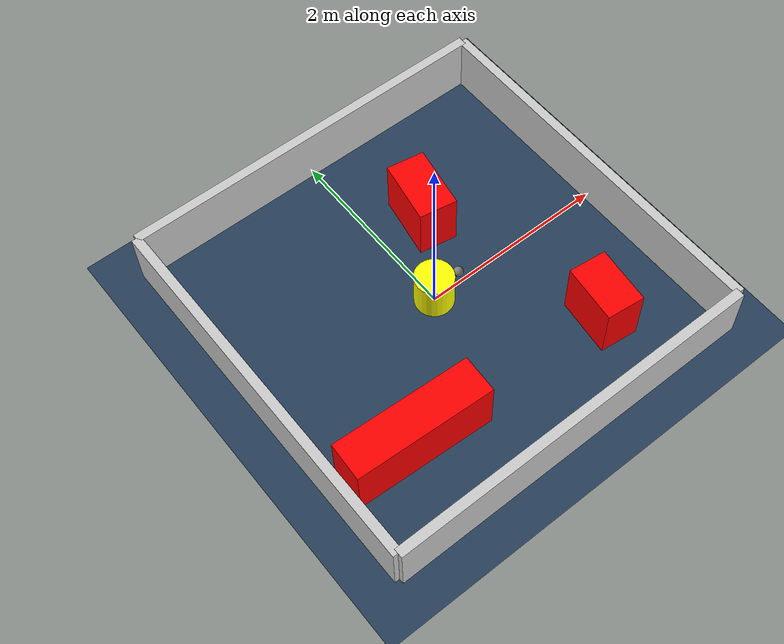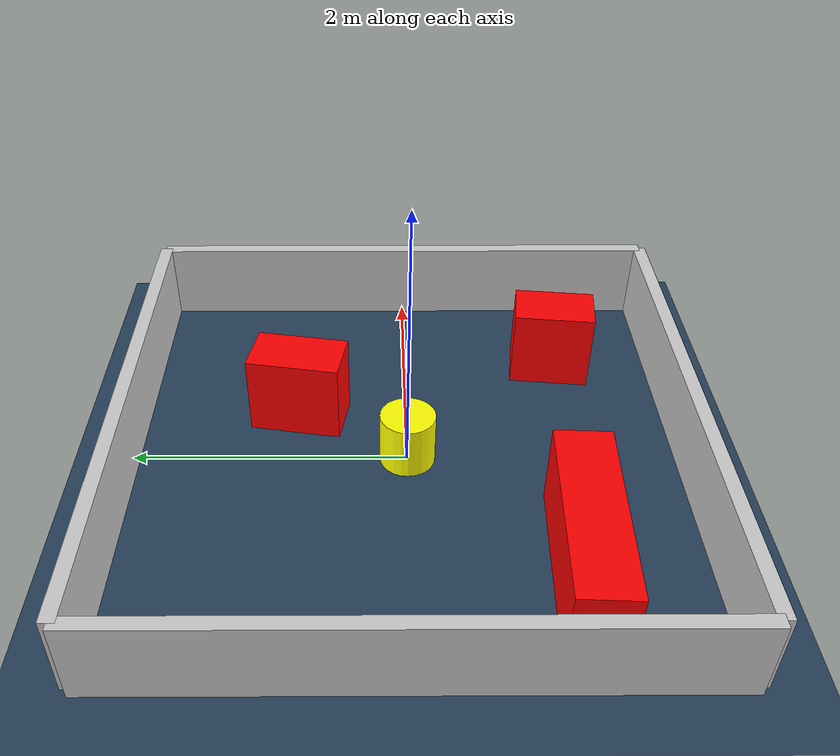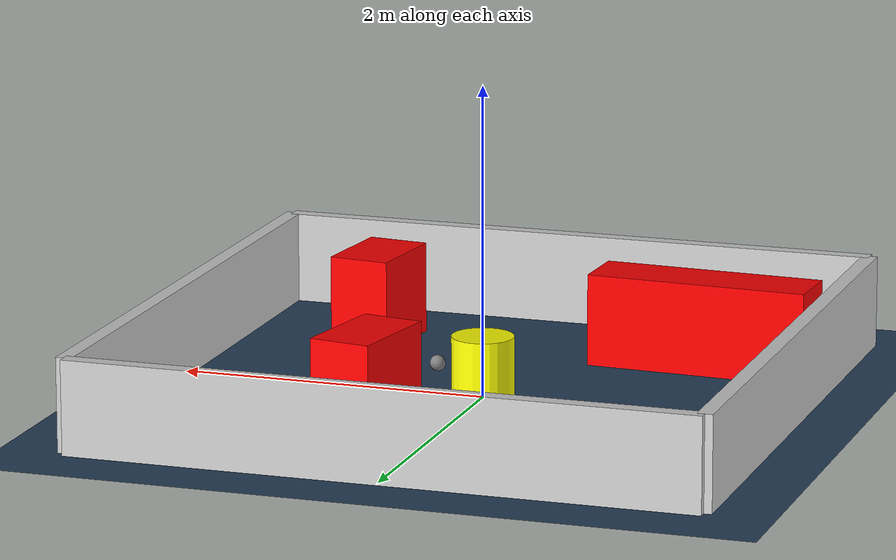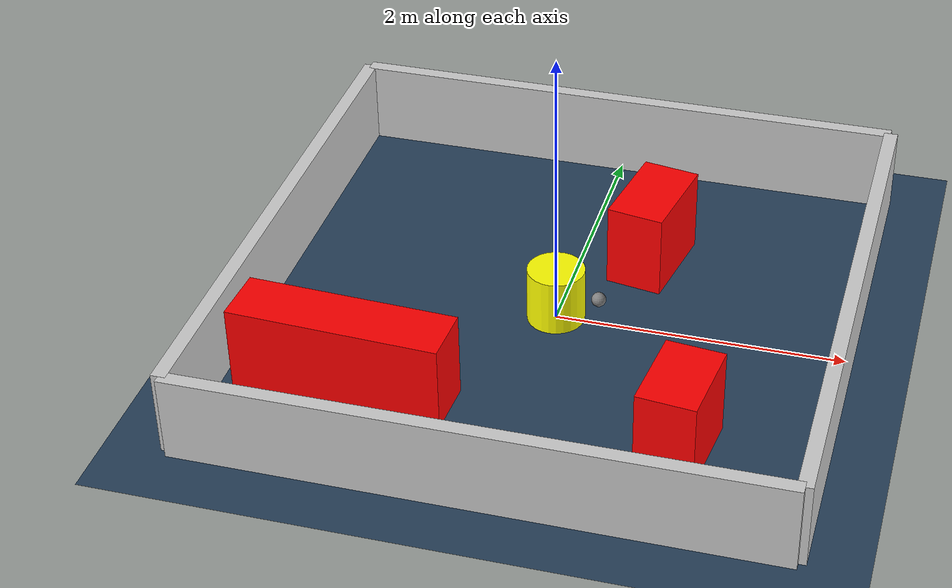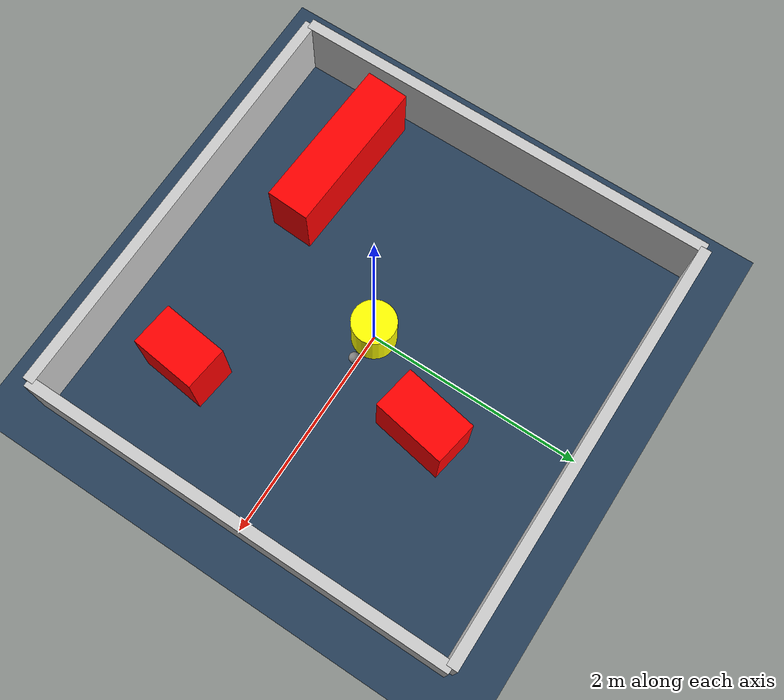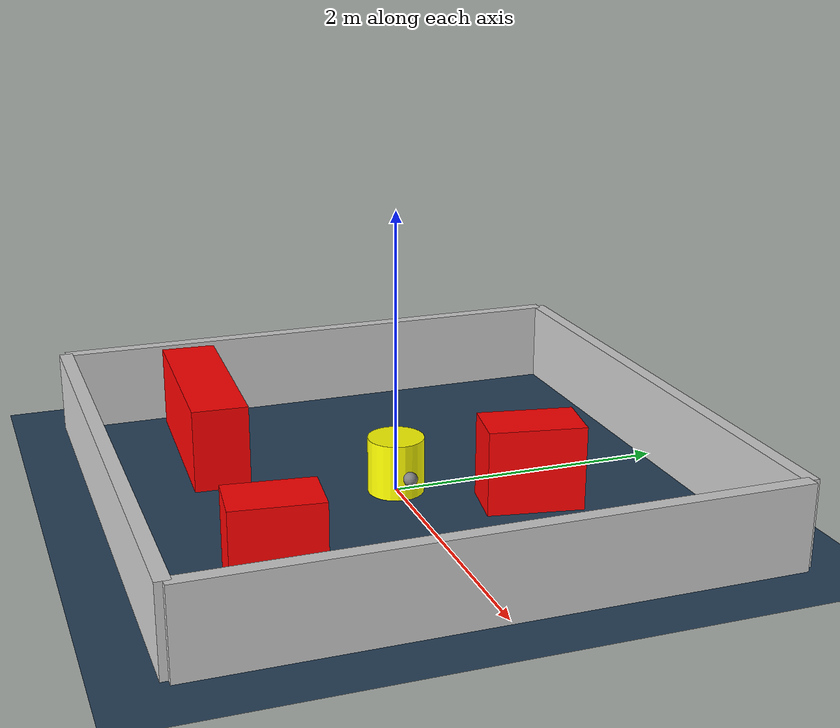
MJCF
<?xml version="1.0" ?>
<mujoco model="generated_environment">
  <option timestep="0.01" integrator="RK4" cone="elliptic"/>
  <default>
    <geom density="1"/>
  </default>
  <asset>
    <texture builtin="gradient" height="3072" rgb1="0.3 0.5 0.7" rgb2="0 0 0" type="skybox" width="512"/>
    <texture builtin="checker" height="300" mark="edge" markrgb="0.8 0.8 0.8" name="groundplane" rgb1="0.2 0.3 0.4" rgb2="0.1 0.2 0.3" type="2d" width="300"/>
    <material name="groundplane" reflectance="0.2" texrepeat="5 5" texture="groundplane" texuniform="true"/>
    <material name="robot" rgba="0.0 1.0 0.0 1"/>
  </asset>
  <worldbody>
    <light dir="0 0 -1" directional="true" pos="0 0 1.5"/>
    <geom condim="4" friction="1.0 0.005 0.001" material="groundplane" name="floor" size="0 0 0.05" type="plane"/>
    <body name="walls">
      <geom name="wall_1" condim="4" pos="-2.0 0.0 0.3" rgba="0.800000011920929 0.800000011920929 0.800000011920929 1.0" size="0.05 2.0 0.3" type="box"/>
      <geom name="wall_2" condim="4" pos="2.0 0.0 0.3" rgba="0.800000011920929 0.800000011920929 0.800000011920929 1.0" size="0.05 2.0 0.3" type="box"/>
      <geom name="wall_3" condim="4" pos="0.0 -2.0 0.3" rgba="0.800000011920929 0.800000011920929 0.800000011920929 1.0" size="2.0 0.05 0.3" type="box"/>
      <geom name="wall_4" condim="4" pos="0.0 2.0 0.3" rgba="0.800000011920929 0.800000011920929 0.800000011920929 1.0" size="2.0 0.05 0.3" type="box"/>
    </body>
    <body name="robot">
      <joint name="joint_x" type="slide" pos="0 0 0" axis="1 0 0"/>
      <joint name="joint_y" type="slide" pos="0 0 0" axis="0 1 0"/>
      <geom name="robot" type="sphere" pos="0.3 0.0 0.2" size="0.05" mass="5." friction="1.0 0.005 0.0001" condim="4" rgba="0.5 0.5 0.5 1.0"/>
      <site name="sensor_ball"/>
    </body>
    <body name="obstacle_movable_1">
      <geom name="obstacle_movable_1" condim="4" pos="0.0 0.0 0.2" euler="0 0 0.0" friction="1.0 0.005 0.001" rgba="1.0 1.0 0.0 1.0" size="0.2 0.2 0.0" type="cylinder" mass="0.1"/>
      <joint type="free"/>
    </body>
    <body name="obstacle_2_static">
      <geom name="obstacle_2_static" condim="4" pos="-1.1302404513612374 -1.1116369906767098 0.3" euler="0 0 177.14403685335265" friction="1.0 0.005 0.001" rgba="1 0 0 1" size="0.7244013978093202 0.2 0.3" type="box"/>
    </body>
    <body name="obstacle_3_static">
      <geom name="obstacle_3_static" condim="4" pos="0.4922247956949346 0.8032199055951785 0.3" euler="0 0 260.02336633272193" friction="1.0 0.005 0.001" rgba="1 0 0 1" size="0.3392463776885668 0.2 0.3" type="box"/>
    </body>
    <body name="obstacle_4_static">
      <geom name="obstacle_4_static" condim="4" pos="1.1003957678638079 -1.1670612464395163 0.3" euler="0 0 263.4524116077699" friction="1.0 0.005 0.001" rgba="1 0 0 1" size="0.30308329167234355 0.2 0.3" type="box"/>
    </body>
  </worldbody>
  <actuator>
    <motor name="actuator_x" joint="joint_x" gear="1" ctrlrange="-1 1"/>
    <motor name="actuator_y" joint="joint_y" gear="1" ctrlrange="-1 1"/>
  </actuator>
</mujoco>
